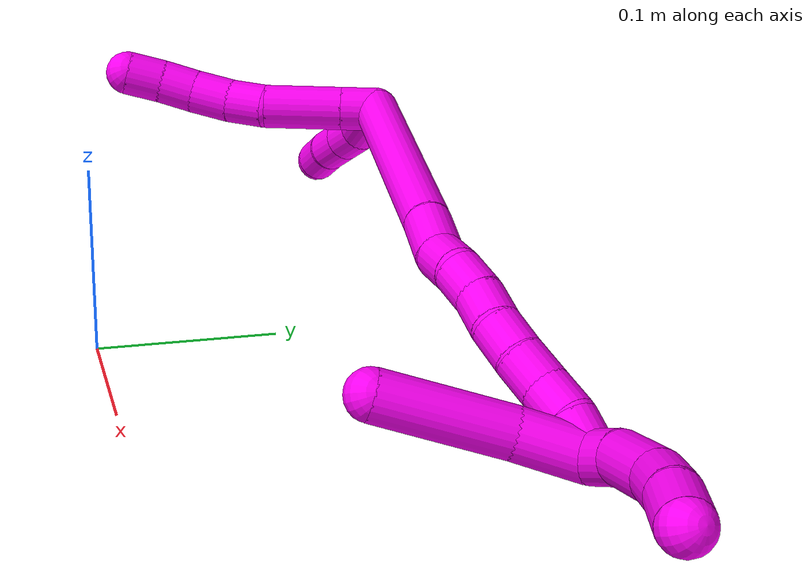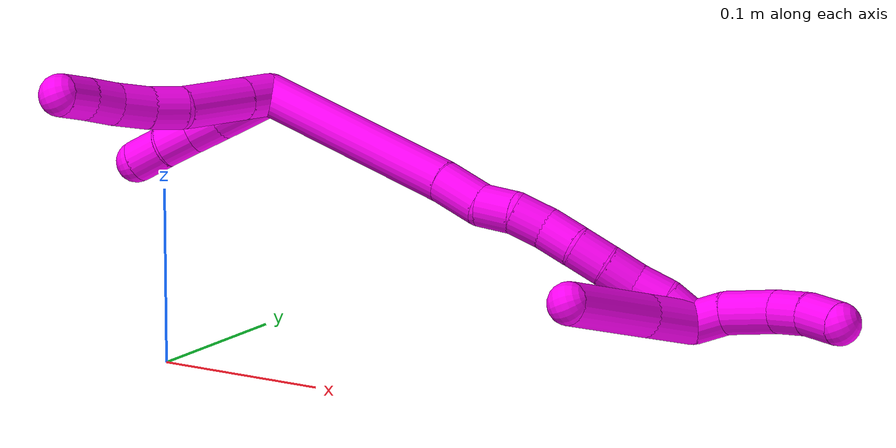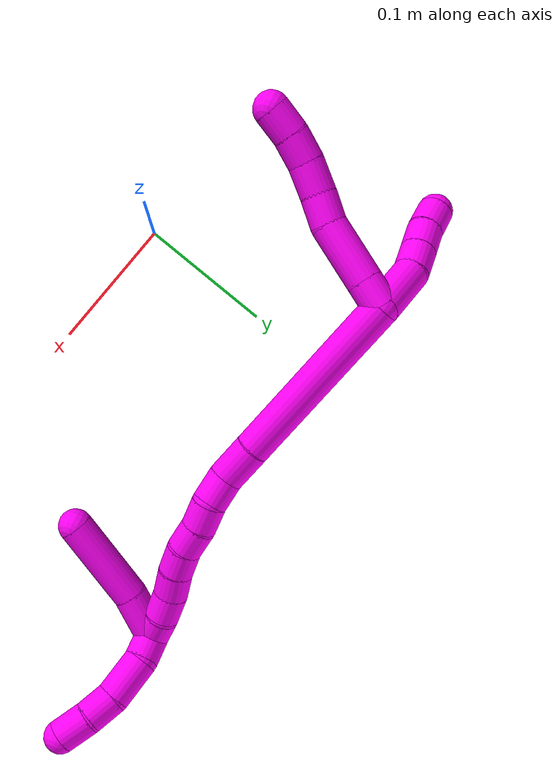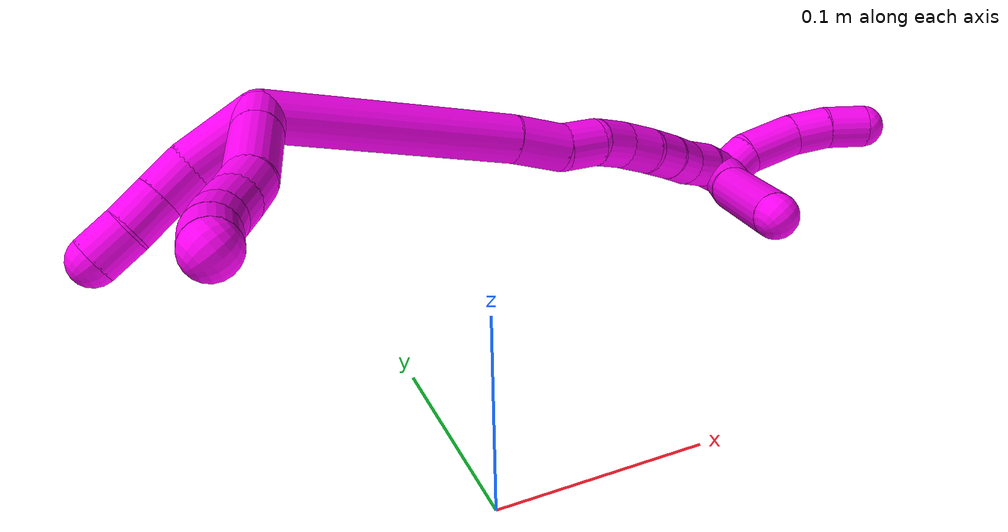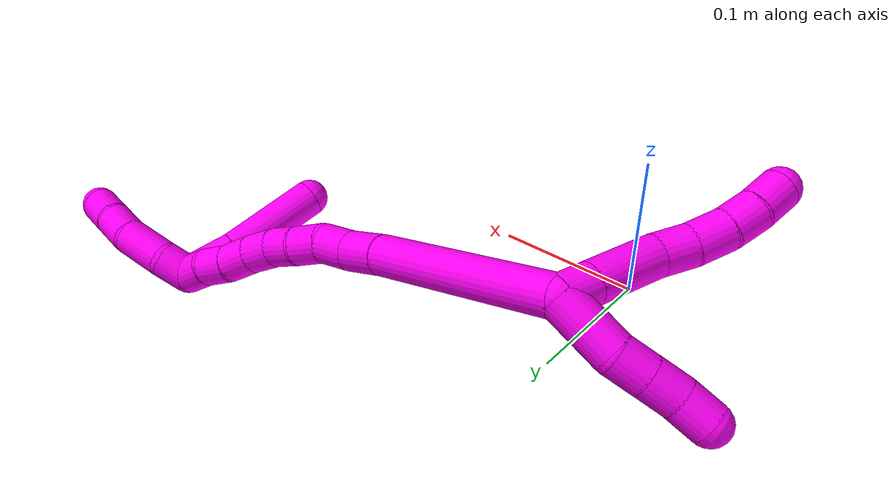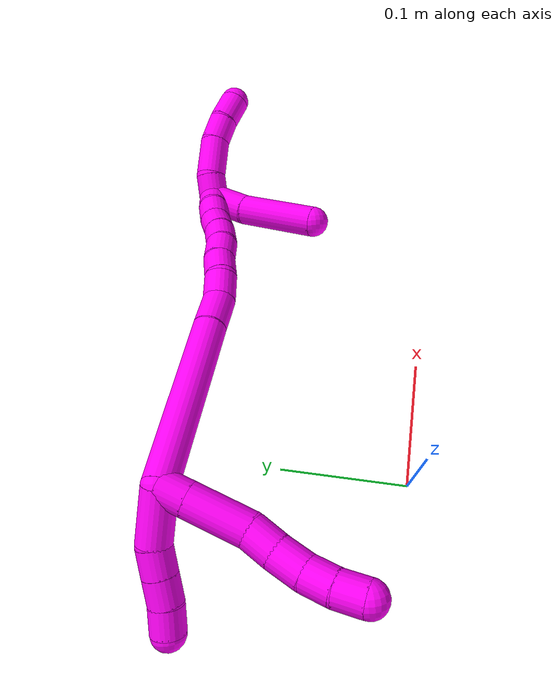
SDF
<sdf version="1.7">
 <world name="default">
  <model name="10">
   <static>0</static>
   <link name="10">
    <collision name="collision-cylinder-e_1_2_8">
     <pose>-0.000545 -0.008946 -0.004849 2.06747 -0.053484 -0.089784</pose>
     <geometry><cylinder><radius>0.0125</radius><length>0.02038</length></cylinder></geometry>
     <surface>
      <friction><ode><mu>1.16</mu><mu2>1.16</mu2><slip1>0</slip1><slip2>0</slip2></ode></friction>
      <contact><ode><kp>1e+06</kp><kd>1</kd><max_vel>0</max_vel><min_depth>0.001</min_depth></ode></contact>
     </surface>
    </collision>
    <visual name="visual-cylinder-e_1_2_8">
     <pose>-0.000545 -0.008946 -0.004849 2.06747 -0.053484 -0.089784</pose>
     <geometry><cylinder><radius>0.0125</radius><length>0.02038</length></cylinder></geometry>
     <material><ambient>1 0 0.964706 1</ambient></material>
    </visual>
    <collision name="collision-cylinder-e_2_8_9">
     <pose>-0.002286 -0.037445 -0.020207 2.06399 -0.053857 -0.090053</pose>
     <geometry><cylinder><radius>0.0125</radius><length>0.044463</length></cylinder></geometry>
     <surface>
      <friction><ode><mu>1.16</mu><mu2>1.16</mu2><slip1>0</slip1><slip2>0</slip2></ode></friction>
      <contact><ode><kp>1e+06</kp><kd>1</kd><max_vel>0</max_vel><min_depth>0.001</min_depth></ode></contact>
     </surface>
    </collision>
    <visual name="visual-cylinder-e_2_8_9">
     <pose>-0.002286 -0.037445 -0.020207 2.06399 -0.053857 -0.090053</pose>
     <geometry><cylinder><radius>0.0125</radius><length>0.044463</length></cylinder></geometry>
     <material><ambient>1 0 0.964706 1</ambient></material>
    </visual>
    <collision name="collision-cylinder-e_3_9_10">
     <pose>-0.005862 -0.06514 -0.037112 2.23669 -0.225902 -0.458521</pose>
     <geometry><cylinder><radius>0.0125</radius><length>0.021244</length></cylinder></geometry>
     <surface>
      <friction><ode><mu>1.16</mu><mu2>1.16</mu2><slip1>0</slip1><slip2>0</slip2></ode></friction>
      <contact><ode><kp>1e+06</kp><kd>1</kd><max_vel>0</max_vel><min_depth>0.001</min_depth></ode></contact>
     </surface>
    </collision>
    <visual name="visual-cylinder-e_3_9_10">
     <pose>-0.005862 -0.06514 -0.037112 2.23669 -0.225902 -0.458521</pose>
     <geometry><cylinder><radius>0.0125</radius><length>0.021244</length></cylinder></geometry>
     <material><ambient>1 0 0.964706 1</ambient></material>
    </visual>
    <collision name="collision-cylinder-e_4_10_11">
     <pose>-0.011619 -0.082452 -0.049218 2.12766 -0.302988 -0.536512</pose>
     <geometry><cylinder><radius>0.0125</radius><length>0.02264</length></cylinder></geometry>
     <surface>
      <friction><ode><mu>1.16</mu><mu2>1.16</mu2><slip1>0</slip1><slip2>0</slip2></ode></friction>
      <contact><ode><kp>1e+06</kp><kd>1</kd><max_vel>0</max_vel><min_depth>0.001</min_depth></ode></contact>
     </surface>
    </collision>
    <visual name="visual-cylinder-e_4_10_11">
     <pose>-0.011619 -0.082452 -0.049218 2.12766 -0.302988 -0.536512</pose>
     <geometry><cylinder><radius>0.0125</radius><length>0.02264</length></cylinder></geometry>
     <material><ambient>1 0 0.964706 1</ambient></material>
    </visual>
    <collision name="collision-cylinder-e_5_11_12">
     <pose>-0.018025 -0.100611 -0.058631 1.96158 -0.302046 -0.446973</pose>
     <geometry><cylinder><radius>0.0125</radius><length>0.02036</length></cylinder></geometry>
     <surface>
      <friction><ode><mu>1.16</mu><mu2>1.16</mu2><slip1>0</slip1><slip2>0</slip2></ode></friction>
      <contact><ode><kp>1e+06</kp><kd>1</kd><max_vel>0</max_vel><min_depth>0.001</min_depth></ode></contact>
     </surface>
    </collision>
    <visual name="visual-cylinder-e_5_11_12">
     <pose>-0.018025 -0.100611 -0.058631 1.96158 -0.302046 -0.446973</pose>
     <geometry><cylinder><radius>0.0125</radius><length>0.02036</length></cylinder></geometry>
     <material><ambient>1 0 0.964706 1</ambient></material>
    </visual>
    <collision name="collision-cylinder-e_6_12_6">
     <pose>-0.023261 -0.11946 -0.065014 1.83623 -0.212747 -0.277562</pose>
     <geometry><cylinder><radius>0.0125</radius><length>0.020913</length></cylinder></geometry>
     <surface>
      <friction><ode><mu>1.16</mu><mu2>1.16</mu2><slip1>0</slip1><slip2>0</slip2></ode></friction>
      <contact><ode><kp>1e+06</kp><kd>1</kd><max_vel>0</max_vel><min_depth>0.001</min_depth></ode></contact>
     </surface>
    </collision>
    <visual name="visual-cylinder-e_6_12_6">
     <pose>-0.023261 -0.11946 -0.065014 1.83623 -0.212747 -0.277562</pose>
     <geometry><cylinder><radius>0.0125</radius><length>0.020913</length></cylinder></geometry>
     <material><ambient>1 0 0.964706 1</ambient></material>
    </visual>
    <collision name="collision-cylinder-e_1_2_13">
     <pose>0.0008 0.004299 -0.019228 -2.92161 0.040568 -0.363339</pose>
     <geometry><cylinder><radius>0.0125</radius><length>0.039438</length></cylinder></geometry>
     <surface>
      <friction><ode><mu>1.16</mu><mu2>1.16</mu2><slip1>0</slip1><slip2>0</slip2></ode></friction>
      <contact><ode><kp>1e+06</kp><kd>1</kd><max_vel>0</max_vel><min_depth>0.001</min_depth></ode></contact>
     </surface>
    </collision>
    <visual name="visual-cylinder-e_1_2_13">
     <pose>0.0008 0.004299 -0.019228 -2.92161 0.040568 -0.363339</pose>
     <geometry><cylinder><radius>0.0125</radius><length>0.039438</length></cylinder></geometry>
     <material><ambient>1 0 0.964706 1</ambient></material>
    </visual>
    <collision name="collision-cylinder-e_2_13_14">
     <pose>0.002452 0.007926 -0.048426 3.07421 0.08511 1.80245</pose>
     <geometry><cylinder><radius>0.0125</radius><length>0.020058</length></cylinder></geometry>
     <surface>
      <friction><ode><mu>1.16</mu><mu2>1.16</mu2><slip1>0</slip1><slip2>0</slip2></ode></friction>
      <contact><ode><kp>1e+06</kp><kd>1</kd><max_vel>0</max_vel><min_depth>0.001</min_depth></ode></contact>
     </surface>
    </collision>
    <visual name="visual-cylinder-e_2_13_14">
     <pose>0.002452 0.007926 -0.048426 3.07421 0.08511 1.80245</pose>
     <geometry><cylinder><radius>0.0125</radius><length>0.020058</length></cylinder></geometry>
     <material><ambient>1 0 0.964706 1</ambient></material>
    </visual>
    <collision name="collision-cylinder-e_3_14_15">
     <pose>0.004263 0.006533 -0.068424 3.06988 0.095037 1.84911</pose>
     <geometry><cylinder><radius>0.0125</radius><length>0.020198</length></cylinder></geometry>
     <surface>
      <friction><ode><mu>1.16</mu><mu2>1.16</mu2><slip1>0</slip1><slip2>0</slip2></ode></friction>
      <contact><ode><kp>1e+06</kp><kd>1</kd><max_vel>0</max_vel><min_depth>0.001</min_depth></ode></contact>
     </surface>
    </collision>
    <visual name="visual-cylinder-e_3_14_15">
     <pose>0.004263 0.006533 -0.068424 3.06988 0.095037 1.84911</pose>
     <geometry><cylinder><radius>0.0125</radius><length>0.020198</length></cylinder></geometry>
     <material><ambient>1 0 0.964706 1</ambient></material>
    </visual>
    <collision name="collision-cylinder-e_4_15_5">
     <pose>0.006134 0.006436 -0.088544 -3.07988 0.09 -1.93978</pose>
     <geometry><cylinder><radius>0.0125</radius><length>0.020306</length></cylinder></geometry>
     <surface>
      <friction><ode><mu>1.16</mu><mu2>1.16</mu2><slip1>0</slip1><slip2>0</slip2></ode></friction>
      <contact><ode><kp>1e+06</kp><kd>1</kd><max_vel>0</max_vel><min_depth>0.001</min_depth></ode></contact>
     </surface>
    </collision>
    <visual name="visual-cylinder-e_4_15_5">
     <pose>0.006134 0.006436 -0.088544 -3.07988 0.09 -1.93978</pose>
     <geometry><cylinder><radius>0.0125</radius><length>0.020306</length></cylinder></geometry>
     <material><ambient>1 0 0.964706 1</ambient></material>
    </visual>
    <collision name="collision-cylinder-e_1_2_16">
     <pose>0.043471 -0.009744 0.047332 0.203021 0.732573 0.078107</pose>
     <geometry><cylinder><radius>0.0125</radius><length>0.129999</length></cylinder></geometry>
     <surface>
      <friction><ode><mu>1.16</mu><mu2>1.16</mu2><slip1>0</slip1><slip2>0</slip2></ode></friction>
      <contact><ode><kp>1e+06</kp><kd>1</kd><max_vel>0</max_vel><min_depth>0.001</min_depth></ode></contact>
     </surface>
    </collision>
    <visual name="visual-cylinder-e_1_2_16">
     <pose>0.043471 -0.009744 0.047332 0.203021 0.732573 0.078107</pose>
     <geometry><cylinder><radius>0.0125</radius><length>0.129999</length></cylinder></geometry>
     <material><ambient>1 0 0.964706 1</ambient></material>
    </visual>
    <collision name="collision-cylinder-e_2_16_17">
     <pose>0.097286 -0.021387 0.104202 0.196582 0.816228 0.085223</pose>
     <geometry><cylinder><radius>0.0125</radius><length>0.028396</length></cylinder></geometry>
     <surface>
      <friction><ode><mu>1.16</mu><mu2>1.16</mu2><slip1>0</slip1><slip2>0</slip2></ode></friction>
      <contact><ode><kp>1e+06</kp><kd>1</kd><max_vel>0</max_vel><min_depth>0.001</min_depth></ode></contact>
     </surface>
    </collision>
    <visual name="visual-cylinder-e_2_16_17">
     <pose>0.097286 -0.021387 0.104202 0.196582 0.816228 0.085223</pose>
     <geometry><cylinder><radius>0.0125</radius><length>0.028396</length></cylinder></geometry>
     <material><ambient>1 0 0.964706 1</ambient></material>
    </visual>
    <collision name="collision-cylinder-e_3_17_18">
     <pose>0.113084 -0.023477 0.122785 0.021051 0.54249 0.005854</pose>
     <geometry><cylinder><radius>0.0125</radius><length>0.021128</length></cylinder></geometry>
     <surface>
      <friction><ode><mu>1.16</mu><mu2>1.16</mu2><slip1>0</slip1><slip2>0</slip2></ode></friction>
      <contact><ode><kp>1e+06</kp><kd>1</kd><max_vel>0</max_vel><min_depth>0.001</min_depth></ode></contact>
     </surface>
    </collision>
    <visual name="visual-cylinder-e_3_17_18">
     <pose>0.113084 -0.023477 0.122785 0.021051 0.54249 0.005854</pose>
     <geometry><cylinder><radius>0.0125</radius><length>0.021128</length></cylinder></geometry>
     <material><ambient>1 0 0.964706 1</ambient></material>
    </visual>
    <collision name="collision-cylinder-e_4_18_19">
     <pose>0.125653 -0.021943 0.138715 -0.245449 0.786693 -0.10228</pose>
     <geometry><cylinder><radius>0.0125</radius><length>0.020099</length></cylinder></geometry>
     <surface>
      <friction><ode><mu>1.16</mu><mu2>1.16</mu2><slip1>0</slip1><slip2>0</slip2></ode></friction>
      <contact><ode><kp>1e+06</kp><kd>1</kd><max_vel>0</max_vel><min_depth>0.001</min_depth></ode></contact>
     </surface>
    </collision>
    <visual name="visual-cylinder-e_4_18_19">
     <pose>0.125653 -0.021943 0.138715 -0.245449 0.786693 -0.10228</pose>
     <geometry><cylinder><radius>0.0125</radius><length>0.020099</length></cylinder></geometry>
     <material><ambient>1 0 0.964706 1</ambient></material>
    </visual>
    <collision name="collision-cylinder-e_5_19_20">
     <pose>0.140526 -0.019964 0.152197 -0.038448 0.865611 -0.017765</pose>
     <geometry><cylinder><radius>0.0125</radius><length>0.020376</length></cylinder></geometry>
     <surface>
      <friction><ode><mu>1.16</mu><mu2>1.16</mu2><slip1>0</slip1><slip2>0</slip2></ode></friction>
      <contact><ode><kp>1e+06</kp><kd>1</kd><max_vel>0</max_vel><min_depth>0.001</min_depth></ode></contact>
     </surface>
    </collision>
    <visual name="visual-cylinder-e_5_19_20">
     <pose>0.140526 -0.019964 0.152197 -0.038448 0.865611 -0.017765</pose>
     <geometry><cylinder><radius>0.0125</radius><length>0.020376</length></cylinder></geometry>
     <material><ambient>1 0 0.964706 1</ambient></material>
    </visual>
    <collision name="collision-cylinder-e_6_20_21">
     <pose>0.156017 -0.017481 0.164732 -0.35934 0.883945 -0.171469</pose>
     <geometry><cylinder><radius>0.0125</radius><length>0.02</length></cylinder></geometry>
     <surface>
      <friction><ode><mu>1.16</mu><mu2>1.16</mu2><slip1>0</slip1><slip2>0</slip2></ode></friction>
      <contact><ode><kp>1e+06</kp><kd>1</kd><max_vel>0</max_vel><min_depth>0.001</min_depth></ode></contact>
     </surface>
    </collision>
    <visual name="visual-cylinder-e_6_20_21">
     <pose>0.156017 -0.017481 0.164732 -0.35934 0.883945 -0.171469</pose>
     <geometry><cylinder><radius>0.0125</radius><length>0.02</length></cylinder></geometry>
     <material><ambient>1 0 0.964706 1</ambient></material>
    </visual>
    <collision name="collision-cylinder-e_7_21_22">
     <pose>0.171463 -0.0119 0.17608 -0.554401 0.880903 -0.266621</pose>
     <geometry><cylinder><radius>0.0125</radius><length>0.020001</length></cylinder></geometry>
     <surface>
      <friction><ode><mu>1.16</mu><mu2>1.16</mu2><slip1>0</slip1><slip2>0</slip2></ode></friction>
      <contact><ode><kp>1e+06</kp><kd>1</kd><max_vel>0</max_vel><min_depth>0.001</min_depth></ode></contact>
     </surface>
    </collision>
    <visual name="visual-cylinder-e_7_21_22">
     <pose>0.171463 -0.0119 0.17608 -0.554401 0.880903 -0.266621</pose>
     <geometry><cylinder><radius>0.0125</radius><length>0.020001</length></cylinder></geometry>
     <material><ambient>1 0 0.964706 1</ambient></material>
    </visual>
    <collision name="collision-cylinder-e_8_22_23">
     <pose>0.18641 -0.006462 0.188074 -0.307042 0.808565 -0.132217</pose>
     <geometry><cylinder><radius>0.0125</radius><length>0.02</length></cylinder></geometry>
     <surface>
      <friction><ode><mu>1.16</mu><mu2>1.16</mu2><slip1>0</slip1><slip2>0</slip2></ode></friction>
      <contact><ode><kp>1e+06</kp><kd>1</kd><max_vel>0</max_vel><min_depth>0.001</min_depth></ode></contact>
     </surface>
    </collision>
    <visual name="visual-cylinder-e_8_22_23">
     <pose>0.18641 -0.006462 0.188074 -0.307042 0.808565 -0.132217</pose>
     <geometry><cylinder><radius>0.0125</radius><length>0.02</length></cylinder></geometry>
     <material><ambient>1 0 0.964706 1</ambient></material>
    </visual>
    <collision name="collision-cylinder-e_9_23_1">
     <pose>0.202176 -0.002873 0.199648 -0.292313 1.0224 -0.164773</pose>
     <geometry><cylinder><radius>0.0125</radius><length>0.02</length></cylinder></geometry>
     <surface>
      <friction><ode><mu>1.16</mu><mu2>1.16</mu2><slip1>0</slip1><slip2>0</slip2></ode></friction>
      <contact><ode><kp>1e+06</kp><kd>1</kd><max_vel>0</max_vel><min_depth>0.001</min_depth></ode></contact>
     </surface>
    </collision>
    <visual name="visual-cylinder-e_9_23_1">
     <pose>0.202176 -0.002873 0.199648 -0.292313 1.0224 -0.164773</pose>
     <geometry><cylinder><radius>0.0125</radius><length>0.02</length></cylinder></geometry>
     <material><ambient>1 0 0.964706 1</ambient></material>
    </visual>
    <collision name="collision-cylinder-e_1_1_24">
     <pose>0.211265 -0.000883 0.214918 -0.047387 0.053912 -0.001278</pose>
     <geometry><cylinder><radius>0.0125</radius><length>0.020609</length></cylinder></geometry>
     <surface>
      <friction><ode><mu>1.16</mu><mu2>1.16</mu2><slip1>0</slip1><slip2>0</slip2></ode></friction>
      <contact><ode><kp>1e+06</kp><kd>1</kd><max_vel>0</max_vel><min_depth>0.001</min_depth></ode></contact>
     </surface>
    </collision>
    <visual name="visual-cylinder-e_1_1_24">
     <pose>0.211265 -0.000883 0.214918 -0.047387 0.053912 -0.001278</pose>
     <geometry><cylinder><radius>0.0125</radius><length>0.020609</length></cylinder></geometry>
     <material><ambient>1 0 0.964706 1</ambient></material>
    </visual>
    <collision name="collision-cylinder-e_2_24_25">
     <pose>0.216645 -0.002707 0.24087 0.146405 0.295574 0.021834</pose>
     <geometry><cylinder><radius>0.0125</radius><length>0.033123</length></cylinder></geometry>
     <surface>
      <friction><ode><mu>1.16</mu><mu2>1.16</mu2><slip1>0</slip1><slip2>0</slip2></ode></friction>
      <contact><ode><kp>1e+06</kp><kd>1</kd><max_vel>0</max_vel><min_depth>0.001</min_depth></ode></contact>
     </surface>
    </collision>
    <visual name="visual-cylinder-e_2_24_25">
     <pose>0.216645 -0.002707 0.24087 0.146405 0.295574 0.021834</pose>
     <geometry><cylinder><radius>0.0125</radius><length>0.033123</length></cylinder></geometry>
     <material><ambient>1 0 0.964706 1</ambient></material>
    </visual>
    <collision name="collision-cylinder-e_3_25_26">
     <pose>0.22532 -0.008949 0.266242 0.385058 0.352606 0.069432</pose>
     <geometry><cylinder><radius>0.0125</radius><length>0.0223</length></cylinder></geometry>
     <surface>
      <friction><ode><mu>1.16</mu><mu2>1.16</mu2><slip1>0</slip1><slip2>0</slip2></ode></friction>
      <contact><ode><kp>1e+06</kp><kd>1</kd><max_vel>0</max_vel><min_depth>0.001</min_depth></ode></contact>
     </surface>
    </collision>
    <visual name="visual-cylinder-e_3_25_26">
     <pose>0.22532 -0.008949 0.266242 0.385058 0.352606 0.069432</pose>
     <geometry><cylinder><radius>0.0125</radius><length>0.0223</length></cylinder></geometry>
     <material><ambient>1 0 0.964706 1</ambient></material>
    </visual>
    <collision name="collision-cylinder-e_4_26_4">
     <pose>0.234961 -0.017662 0.285278 0.473334 0.504339 0.124126</pose>
     <geometry><cylinder><radius>0.0125</radius><length>0.023968</length></cylinder></geometry>
     <surface>
      <friction><ode><mu>1.16</mu><mu2>1.16</mu2><slip1>0</slip1><slip2>0</slip2></ode></friction>
      <contact><ode><kp>1e+06</kp><kd>1</kd><max_vel>0</max_vel><min_depth>0.001</min_depth></ode></contact>
     </surface>
    </collision>
    <visual name="visual-cylinder-e_4_26_4">
     <pose>0.234961 -0.017662 0.285278 0.473334 0.504339 0.124126</pose>
     <geometry><cylinder><radius>0.0125</radius><length>0.023968</length></cylinder></geometry>
     <material><ambient>1 0 0.964706 1</ambient></material>
    </visual>
    <collision name="collision-cylinder-e_1_1_27">
     <pose>0.205325 -0.016244 0.197438 2.02176 -0.315009 -0.496295</pose>
     <geometry><cylinder><radius>0.0125</radius><length>0.034763</length></cylinder></geometry>
     <surface>
      <friction><ode><mu>1.16</mu><mu2>1.16</mu2><slip1>0</slip1><slip2>0</slip2></ode></friction>
      <contact><ode><kp>1e+06</kp><kd>1</kd><max_vel>0</max_vel><min_depth>0.001</min_depth></ode></contact>
     </surface>
    </collision>
    <visual name="visual-cylinder-e_1_1_27">
     <pose>0.205325 -0.016244 0.197438 2.02176 -0.315009 -0.496295</pose>
     <geometry><cylinder><radius>0.0125</radius><length>0.034763</length></cylinder></geometry>
     <material><ambient>1 0 0.964706 1</ambient></material>
    </visual>
    <collision name="collision-cylinder-e_2_27_3">
     <pose>0.191673 -0.061293 0.18101 1.86749 -0.256239 -0.344736</pose>
     <geometry><cylinder><radius>0.0125</radius><length>0.065237</length></cylinder></geometry>
     <surface>
      <friction><ode><mu>1.16</mu><mu2>1.16</mu2><slip1>0</slip1><slip2>0</slip2></ode></friction>
      <contact><ode><kp>1e+06</kp><kd>1</kd><max_vel>0</max_vel><min_depth>0.001</min_depth></ode></contact>
     </surface>
    </collision>
    <visual name="visual-cylinder-e_2_27_3">
     <pose>0.191673 -0.061293 0.18101 1.86749 -0.256239 -0.344736</pose>
     <geometry><cylinder><radius>0.0125</radius><length>0.065237</length></cylinder></geometry>
     <material><ambient>1 0 0.964706 1</ambient></material>
    </visual>
    <collision name="collision-sphere-3">
     <pose>0.183406 -0.091468 0.171785 0 -0 0</pose>
     <geometry><sphere><radius>0.0125</radius></sphere></geometry>
     <surface>
      <friction><ode><mu>1.16</mu><mu2>1.16</mu2><slip1>0</slip1><slip2>0</slip2></ode></friction>
      <contact><ode><kp>1e+06</kp><kd>1</kd><max_vel>0</max_vel><min_depth>0.001</min_depth></ode></contact>
     </surface>
    </collision>
    <visual name="visual-sphere-3">
     <pose>0.183406 -0.091468 0.171785 0 -0 0</pose>
     <geometry><sphere><radius>0.0125</radius></sphere></geometry>
     <material><ambient>1 0 0.964706 1</ambient></material>
    </visual>
    <collision name="collision-sphere-27">
     <pose>0.19994 -0.031118 0.190235 0 -0 0</pose>
     <geometry><sphere><radius>0.0125</radius></sphere></geometry>
     <surface>
      <friction><ode><mu>1.16</mu><mu2>1.16</mu2><slip1>0</slip1><slip2>0</slip2></ode></friction>
      <contact><ode><kp>1e+06</kp><kd>1</kd><max_vel>0</max_vel><min_depth>0.001</min_depth></ode></contact>
     </surface>
    </collision>
    <visual name="visual-sphere-27">
     <pose>0.19994 -0.031118 0.190235 0 -0 0</pose>
     <geometry><sphere><radius>0.0125</radius></sphere></geometry>
     <material><ambient>1 0 0.964706 1</ambient></material>
    </visual>
    <collision name="collision-sphere-4">
     <pose>0.240752 -0.022445 0.294616 0 -0 0</pose>
     <geometry><sphere><radius>0.0125</radius></sphere></geometry>
     <surface>
      <friction><ode><mu>1.16</mu><mu2>1.16</mu2><slip1>0</slip1><slip2>0</slip2></ode></friction>
      <contact><ode><kp>1e+06</kp><kd>1</kd><max_vel>0</max_vel><min_depth>0.001</min_depth></ode></contact>
     </surface>
    </collision>
    <visual name="visual-sphere-4">
     <pose>0.240752 -0.022445 0.294616 0 -0 0</pose>
     <geometry><sphere><radius>0.0125</radius></sphere></geometry>
     <material><ambient>1 0 0.964706 1</ambient></material>
    </visual>
    <collision name="collision-sphere-26">
     <pose>0.22917 -0.012879 0.27594 0 -0 0</pose>
     <geometry><sphere><radius>0.0125</radius></sphere></geometry>
     <surface>
      <friction><ode><mu>1.16</mu><mu2>1.16</mu2><slip1>0</slip1><slip2>0</slip2></ode></friction>
      <contact><ode><kp>1e+06</kp><kd>1</kd><max_vel>0</max_vel><min_depth>0.001</min_depth></ode></contact>
     </surface>
    </collision>
    <visual name="visual-sphere-26">
     <pose>0.22917 -0.012879 0.27594 0 -0 0</pose>
     <geometry><sphere><radius>0.0125</radius></sphere></geometry>
     <material><ambient>1 0 0.964706 1</ambient></material>
    </visual>
    <collision name="collision-sphere-25">
     <pose>0.221469 -0.005018 0.256544 0 -0 0</pose>
     <geometry><sphere><radius>0.0125</radius></sphere></geometry>
     <surface>
      <friction><ode><mu>1.16</mu><mu2>1.16</mu2><slip1>0</slip1><slip2>0</slip2></ode></friction>
      <contact><ode><kp>1e+06</kp><kd>1</kd><max_vel>0</max_vel><min_depth>0.001</min_depth></ode></contact>
     </surface>
    </collision>
    <visual name="visual-sphere-25">
     <pose>0.221469 -0.005018 0.256544 0 -0 0</pose>
     <geometry><sphere><radius>0.0125</radius></sphere></geometry>
     <material><ambient>1 0 0.964706 1</ambient></material>
    </visual>
    <collision name="collision-sphere-24">
     <pose>0.211821 -0.000396 0.225196 0 -0 0</pose>
     <geometry><sphere><radius>0.0125</radius></sphere></geometry>
     <surface>
      <friction><ode><mu>1.16</mu><mu2>1.16</mu2><slip1>0</slip1><slip2>0</slip2></ode></friction>
      <contact><ode><kp>1e+06</kp><kd>1</kd><max_vel>0</max_vel><min_depth>0.001</min_depth></ode></contact>
     </surface>
    </collision>
    <visual name="visual-sphere-24">
     <pose>0.211821 -0.000396 0.225196 0 -0 0</pose>
     <geometry><sphere><radius>0.0125</radius></sphere></geometry>
     <material><ambient>1 0 0.964706 1</ambient></material>
    </visual>
    <collision name="collision-sphere-1">
     <pose>0.21071 -0.00137 0.204641 0 -0 0</pose>
     <geometry><sphere><radius>0.0125</radius></sphere></geometry>
     <surface>
      <friction><ode><mu>1.16</mu><mu2>1.16</mu2><slip1>0</slip1><slip2>0</slip2></ode></friction>
      <contact><ode><kp>1e+06</kp><kd>1</kd><max_vel>0</max_vel><min_depth>0.001</min_depth></ode></contact>
     </surface>
    </collision>
    <visual name="visual-sphere-1">
     <pose>0.21071 -0.00137 0.204641 0 -0 0</pose>
     <geometry><sphere><radius>0.0125</radius></sphere></geometry>
     <material><ambient>1 0 0.964706 1</ambient></material>
    </visual>
    <collision name="collision-sphere-23">
     <pose>0.193643 -0.004375 0.194656 0 -0 0</pose>
     <geometry><sphere><radius>0.0125</radius></sphere></geometry>
     <surface>
      <friction><ode><mu>1.16</mu><mu2>1.16</mu2><slip1>0</slip1><slip2>0</slip2></ode></friction>
      <contact><ode><kp>1e+06</kp><kd>1</kd><max_vel>0</max_vel><min_depth>0.001</min_depth></ode></contact>
     </surface>
    </collision>
    <visual name="visual-sphere-23">
     <pose>0.193643 -0.004375 0.194656 0 -0 0</pose>
     <geometry><sphere><radius>0.0125</radius></sphere></geometry>
     <material><ambient>1 0 0.964706 1</ambient></material>
    </visual>
    <collision name="collision-sphere-22">
     <pose>0.179177 -0.008549 0.181492 0 -0 0</pose>
     <geometry><sphere><radius>0.0125</radius></sphere></geometry>
     <surface>
      <friction><ode><mu>1.16</mu><mu2>1.16</mu2><slip1>0</slip1><slip2>0</slip2></ode></friction>
      <contact><ode><kp>1e+06</kp><kd>1</kd><max_vel>0</max_vel><min_depth>0.001</min_depth></ode></contact>
     </surface>
    </collision>
    <visual name="visual-sphere-22">
     <pose>0.179177 -0.008549 0.181492 0 -0 0</pose>
     <geometry><sphere><radius>0.0125</radius></sphere></geometry>
     <material><ambient>1 0 0.964706 1</ambient></material>
    </visual>
    <collision name="collision-sphere-21">
     <pose>0.163749 -0.015251 0.170668 0 -0 0</pose>
     <geometry><sphere><radius>0.0125</radius></sphere></geometry>
     <surface>
      <friction><ode><mu>1.16</mu><mu2>1.16</mu2><slip1>0</slip1><slip2>0</slip2></ode></friction>
      <contact><ode><kp>1e+06</kp><kd>1</kd><max_vel>0</max_vel><min_depth>0.001</min_depth></ode></contact>
     </surface>
    </collision>
    <visual name="visual-sphere-21">
     <pose>0.163749 -0.015251 0.170668 0 -0 0</pose>
     <geometry><sphere><radius>0.0125</radius></sphere></geometry>
     <material><ambient>1 0 0.964706 1</ambient></material>
    </visual>
    <collision name="collision-sphere-12">
     <pose>-0.021053 -0.109598 -0.062333 0 -0 0</pose>
     <geometry><sphere><radius>0.0125</radius></sphere></geometry>
     <surface>
      <friction><ode><mu>1.16</mu><mu2>1.16</mu2><slip1>0</slip1><slip2>0</slip2></ode></friction>
      <contact><ode><kp>1e+06</kp><kd>1</kd><max_vel>0</max_vel><min_depth>0.001</min_depth></ode></contact>
     </surface>
    </collision>
    <visual name="visual-sphere-12">
     <pose>-0.021053 -0.109598 -0.062333 0 -0 0</pose>
     <geometry><sphere><radius>0.0125</radius></sphere></geometry>
     <material><ambient>1 0 0.964706 1</ambient></material>
    </visual>
    <collision name="collision-sphere-11">
     <pose>-0.014997 -0.091624 -0.054928 0 -0 0</pose>
     <geometry><sphere><radius>0.0125</radius></sphere></geometry>
     <surface>
      <friction><ode><mu>1.16</mu><mu2>1.16</mu2><slip1>0</slip1><slip2>0</slip2></ode></friction>
      <contact><ode><kp>1e+06</kp><kd>1</kd><max_vel>0</max_vel><min_depth>0.001</min_depth></ode></contact>
     </surface>
    </collision>
    <visual name="visual-sphere-11">
     <pose>-0.014997 -0.091624 -0.054928 0 -0 0</pose>
     <geometry><sphere><radius>0.0125</radius></sphere></geometry>
     <material><ambient>1 0 0.964706 1</ambient></material>
    </visual>
    <collision name="collision-sphere-10">
     <pose>-0.008241 -0.07328 -0.043508 0 -0 0</pose>
     <geometry><sphere><radius>0.0125</radius></sphere></geometry>
     <surface>
      <friction><ode><mu>1.16</mu><mu2>1.16</mu2><slip1>0</slip1><slip2>0</slip2></ode></friction>
      <contact><ode><kp>1e+06</kp><kd>1</kd><max_vel>0</max_vel><min_depth>0.001</min_depth></ode></contact>
     </surface>
    </collision>
    <visual name="visual-sphere-10">
     <pose>-0.008241 -0.07328 -0.043508 0 -0 0</pose>
     <geometry><sphere><radius>0.0125</radius></sphere></geometry>
     <material><ambient>1 0 0.964706 1</ambient></material>
    </visual>
    <collision name="collision-sphere-9">
     <pose>-0.003483 -0.056999 -0.030717 0 -0 0</pose>
     <geometry><sphere><radius>0.0125</radius></sphere></geometry>
     <surface>
      <friction><ode><mu>1.16</mu><mu2>1.16</mu2><slip1>0</slip1><slip2>0</slip2></ode></friction>
      <contact><ode><kp>1e+06</kp><kd>1</kd><max_vel>0</max_vel><min_depth>0.001</min_depth></ode></contact>
     </surface>
    </collision>
    <visual name="visual-sphere-9">
     <pose>-0.003483 -0.056999 -0.030717 0 -0 0</pose>
     <geometry><sphere><radius>0.0125</radius></sphere></geometry>
     <material><ambient>1 0 0.964706 1</ambient></material>
    </visual>
    <collision name="collision-sphere-2">
     <geometry><sphere><radius>0.0125</radius></sphere></geometry>
     <surface>
      <friction><ode><mu>1.16</mu><mu2>1.16</mu2><slip1>0</slip1><slip2>0</slip2></ode></friction>
      <contact><ode><kp>1e+06</kp><kd>1</kd><max_vel>0</max_vel><min_depth>0.001</min_depth></ode></contact>
     </surface>
    </collision>
    <visual name="visual-sphere-2">
     <geometry><sphere><radius>0.0125</radius></sphere></geometry>
     <material><ambient>1 0 0.964706 1</ambient></material>
    </visual>
    <collision name="collision-sphere-19">
     <pose>0.132768 -0.020218 0.145599 0 -0 0</pose>
     <geometry><sphere><radius>0.0125</radius></sphere></geometry>
     <surface>
      <friction><ode><mu>1.16</mu><mu2>1.16</mu2><slip1>0</slip1><slip2>0</slip2></ode></friction>
      <contact><ode><kp>1e+06</kp><kd>1</kd><max_vel>0</max_vel><min_depth>0.001</min_depth></ode></contact>
     </surface>
    </collision>
    <visual name="visual-sphere-19">
     <pose>0.132768 -0.020218 0.145599 0 -0 0</pose>
     <geometry><sphere><radius>0.0125</radius></sphere></geometry>
     <material><ambient>1 0 0.964706 1</ambient></material>
    </visual>
    <collision name="collision-sphere-8">
     <pose>-0.001089 -0.017892 -0.009697 0 -0 0</pose>
     <geometry><sphere><radius>0.0125</radius></sphere></geometry>
     <surface>
      <friction><ode><mu>1.16</mu><mu2>1.16</mu2><slip1>0</slip1><slip2>0</slip2></ode></friction>
      <contact><ode><kp>1e+06</kp><kd>1</kd><max_vel>0</max_vel><min_depth>0.001</min_depth></ode></contact>
     </surface>
    </collision>
    <visual name="visual-sphere-8">
     <pose>-0.001089 -0.017892 -0.009697 0 -0 0</pose>
     <geometry><sphere><radius>0.0125</radius></sphere></geometry>
     <material><ambient>1 0 0.964706 1</ambient></material>
    </visual>
    <collision name="collision-sphere-6">
     <pose>-0.025469 -0.129323 -0.067695 0 -0 0</pose>
     <geometry><sphere><radius>0.0125</radius></sphere></geometry>
     <surface>
      <friction><ode><mu>1.16</mu><mu2>1.16</mu2><slip1>0</slip1><slip2>0</slip2></ode></friction>
      <contact><ode><kp>1e+06</kp><kd>1</kd><max_vel>0</max_vel><min_depth>0.001</min_depth></ode></contact>
     </surface>
    </collision>
    <visual name="visual-sphere-6">
     <pose>-0.025469 -0.129323 -0.067695 0 -0 0</pose>
     <geometry><sphere><radius>0.0125</radius></sphere></geometry>
     <material><ambient>1 0 0.964706 1</ambient></material>
    </visual>
    <collision name="collision-sphere-13">
     <pose>0.0016 0.008599 -0.038456 0 -0 0</pose>
     <geometry><sphere><radius>0.0125</radius></sphere></geometry>
     <surface>
      <friction><ode><mu>1.16</mu><mu2>1.16</mu2><slip1>0</slip1><slip2>0</slip2></ode></friction>
      <contact><ode><kp>1e+06</kp><kd>1</kd><max_vel>0</max_vel><min_depth>0.001</min_depth></ode></contact>
     </surface>
    </collision>
    <visual name="visual-sphere-13">
     <pose>0.0016 0.008599 -0.038456 0 -0 0</pose>
     <geometry><sphere><radius>0.0125</radius></sphere></geometry>
     <material><ambient>1 0 0.964706 1</ambient></material>
    </visual>
    <collision name="collision-sphere-14">
     <pose>0.003305 0.007253 -0.058396 0 -0 0</pose>
     <geometry><sphere><radius>0.0125</radius></sphere></geometry>
     <surface>
      <friction><ode><mu>1.16</mu><mu2>1.16</mu2><slip1>0</slip1><slip2>0</slip2></ode></friction>
      <contact><ode><kp>1e+06</kp><kd>1</kd><max_vel>0</max_vel><min_depth>0.001</min_depth></ode></contact>
     </surface>
    </collision>
    <visual name="visual-sphere-14">
     <pose>0.003305 0.007253 -0.058396 0 -0 0</pose>
     <geometry><sphere><radius>0.0125</radius></sphere></geometry>
     <material><ambient>1 0 0.964706 1</ambient></material>
    </visual>
    <collision name="collision-sphere-15">
     <pose>0.005221 0.005813 -0.078452 0 -0 0</pose>
     <geometry><sphere><radius>0.0125</radius></sphere></geometry>
     <surface>
      <friction><ode><mu>1.16</mu><mu2>1.16</mu2><slip1>0</slip1><slip2>0</slip2></ode></friction>
      <contact><ode><kp>1e+06</kp><kd>1</kd><max_vel>0</max_vel><min_depth>0.001</min_depth></ode></contact>
     </surface>
    </collision>
    <visual name="visual-sphere-15">
     <pose>0.005221 0.005813 -0.078452 0 -0 0</pose>
     <geometry><sphere><radius>0.0125</radius></sphere></geometry>
     <material><ambient>1 0 0.964706 1</ambient></material>
    </visual>
    <collision name="collision-sphere-5">
     <pose>0.007046 0.00706 -0.098636 0 -0 0</pose>
     <geometry><sphere><radius>0.0125</radius></sphere></geometry>
     <surface>
      <friction><ode><mu>1.16</mu><mu2>1.16</mu2><slip1>0</slip1><slip2>0</slip2></ode></friction>
      <contact><ode><kp>1e+06</kp><kd>1</kd><max_vel>0</max_vel><min_depth>0.001</min_depth></ode></contact>
     </surface>
    </collision>
    <visual name="visual-sphere-5">
     <pose>0.007046 0.00706 -0.098636 0 -0 0</pose>
     <geometry><sphere><radius>0.0125</radius></sphere></geometry>
     <material><ambient>1 0 0.964706 1</ambient></material>
    </visual>
    <collision name="collision-sphere-16">
     <pose>0.086941 -0.019487 0.094664 0 -0 0</pose>
     <geometry><sphere><radius>0.0125</radius></sphere></geometry>
     <surface>
      <friction><ode><mu>1.16</mu><mu2>1.16</mu2><slip1>0</slip1><slip2>0</slip2></ode></friction>
      <contact><ode><kp>1e+06</kp><kd>1</kd><max_vel>0</max_vel><min_depth>0.001</min_depth></ode></contact>
     </surface>
    </collision>
    <visual name="visual-sphere-16">
     <pose>0.086941 -0.019487 0.094664 0 -0 0</pose>
     <geometry><sphere><radius>0.0125</radius></sphere></geometry>
     <material><ambient>1 0 0.964706 1</ambient></material>
    </visual>
    <collision name="collision-sphere-17">
     <pose>0.10763 -0.023286 0.11374 0 -0 0</pose>
     <geometry><sphere><radius>0.0125</radius></sphere></geometry>
     <surface>
      <friction><ode><mu>1.16</mu><mu2>1.16</mu2><slip1>0</slip1><slip2>0</slip2></ode></friction>
      <contact><ode><kp>1e+06</kp><kd>1</kd><max_vel>0</max_vel><min_depth>0.001</min_depth></ode></contact>
     </surface>
    </collision>
    <visual name="visual-sphere-17">
     <pose>0.10763 -0.023286 0.11374 0 -0 0</pose>
     <geometry><sphere><radius>0.0125</radius></sphere></geometry>
     <material><ambient>1 0 0.964706 1</ambient></material>
    </visual>
    <collision name="collision-sphere-18">
     <pose>0.118538 -0.023667 0.13183 0 -0 0</pose>
     <geometry><sphere><radius>0.0125</radius></sphere></geometry>
     <surface>
      <friction><ode><mu>1.16</mu><mu2>1.16</mu2><slip1>0</slip1><slip2>0</slip2></ode></friction>
      <contact><ode><kp>1e+06</kp><kd>1</kd><max_vel>0</max_vel><min_depth>0.001</min_depth></ode></contact>
     </surface>
    </collision>
    <visual name="visual-sphere-18">
     <pose>0.118538 -0.023667 0.13183 0 -0 0</pose>
     <geometry><sphere><radius>0.0125</radius></sphere></geometry>
     <material><ambient>1 0 0.964706 1</ambient></material>
    </visual>
    <collision name="collision-sphere-20">
     <pose>0.148284 -0.01971 0.158796 0 -0 0</pose>
     <geometry><sphere><radius>0.0125</radius></sphere></geometry>
     <surface>
      <friction><ode><mu>1.16</mu><mu2>1.16</mu2><slip1>0</slip1><slip2>0</slip2></ode></friction>
      <contact><ode><kp>1e+06</kp><kd>1</kd><max_vel>0</max_vel><min_depth>0.001</min_depth></ode></contact>
     </surface>
    </collision>
    <visual name="visual-sphere-20">
     <pose>0.148284 -0.01971 0.158796 0 -0 0</pose>
     <geometry><sphere><radius>0.0125</radius></sphere></geometry>
     <material><ambient>1 0 0.964706 1</ambient></material>
    </visual>
    <inertial>
     <pose>0.095039 -0.024453 0.087544 0 -0 0</pose>
     <mass>0.75</mass>
     <inertia>
      <ixx>0.000217</ixx>
      <ixy>0</ixy>
      <ixz>0</ixz>
      <iyy>0.000168</iyy>
      <iyz>0</iyz>
      <izz>-5.1e-05</izz>
     </inertia>
    </inertial>
   </link>
   <pose>-0.042979 0.170343 0.117498 -0.422128 1.10816 -0.228338</pose>
  </model>
 </world>
</sdf>
